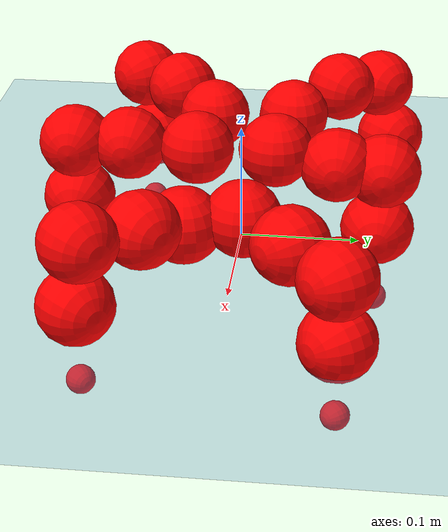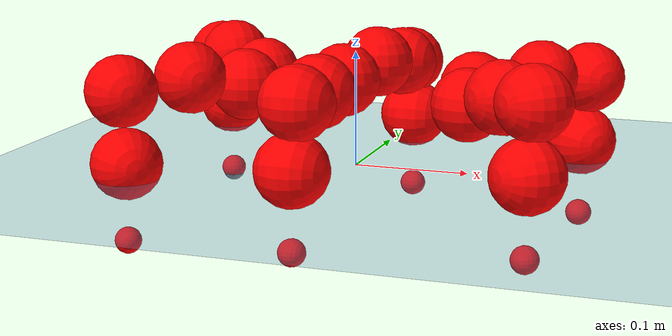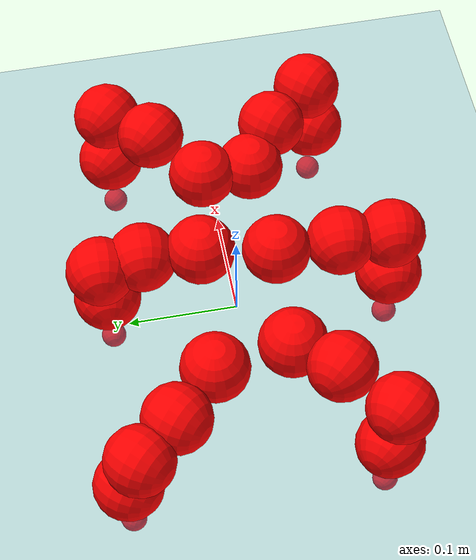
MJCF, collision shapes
<mujoco model="Golem">
  <compiler angle="radian" assetdir="assets" balanceinertia="true" inertiafromgeom="false"/>

  <option timestep="0.005" density="1.2" viscosity="2e-05"/>

  <size nkey="1"/>

  <visual>
    <quality shadowsize="8192"/>
    <map shadowclip="0.5"/>
  </visual>

  <default>
    <default class="/">
      <joint armature="0.01" damping="0.01" frictionloss="0.01"/>
      <geom contype="0" conaffinity="0" group="1" solref="-1000 -80"/>
      <site size="0.01 0.005 0.005" group="5"/>
      <general forcelimited="true" biastype="affine" gainprm="25" biasprm="0 -25 -0.5"/>
      <default class="visual">
        <geom type="mesh" group="2"/>
      </default>
      <default class="collision">
        <geom group="3"/>
      </default>
      <default class="foot">
        <geom size="0.01 0 0" condim="6" group="4" priority="1" solimp="0.015 1 0.01"/>
      </default>
      <default class="reward_collision_sphere">
        <geom group="5" rgba="1 0 0 1"/>
      </default>
    </default>
  </default>

  <asset>
    <texture type="skybox" colorspace="auto" name="//unnamed_texture_0" builtin="gradient" rgb1="0.95 0.95 0.95" rgb2="0.95 0.95 0.95" width="100" height="600"/>
    <texture type="2d" colorspace="auto" name="texplane" builtin="checker" rgb1="0.345 0.575 0.748" rgb2="0.345 0.575 0.748" markrgb="1 1 1" width="512" height="512"/>
    <material name="MatPlane" class="/" texture="texplane" texuniform="true" texrepeat="2 2" specular="0.9"/>
    <mesh name="body" class="/" file="body.stl" scale="0.001 0.001 0.001"/>
    <mesh name="coxa" class="/" file="coxa.stl" scale="0.001 0.001 0.001"/>
    <mesh name="femur" class="/" file="femur.stl" scale="0.001 0.001 0.001"/>
    <mesh name="tibia" class="/" file="tibia.stl" scale="0.001 0.001 0.001"/>
    <mesh name="tarsus" class="/" file="tarsus.stl" scale="0.001 0.001 0.001"/>
  </asset>

  <worldbody>
    <geom name="floor" class="/" size="100 100 0.125" type="plane" group="0" material="MatPlane"/>
    <light name="toplight_shadow" class="/" pos="0 0 5" dir="0.0990148 0.0990148 -0.990148" type="directional" ambient="0.04 0.04 0.04" diffuse="0.55 0.55 0.55" specular="0.12 0.12 0.12"/>
    <light name="toplight_fill" class="/" pos="0 0 5" dir="0.0990148 0.0990148 -0.990148" type="directional" castshadow="false" ambient="0.04 0.04 0.04" diffuse="0.3 0.3 0.3" specular="0.08 0.08 0.08"/>
    <body name="trunk" pos="0.0010328 -0.000956251 -0.00125227" quat="0.999982 -0.00276086 0.00195119 -0.00487625">
      <inertial pos="-0.0019397 -0.00198191 -0.00530893" quat="0.999999 -0.00025613 0.00145633 0.000642501" mass="1.41786" diaginertia="0.000901656 0.000216368 0.0263927"/>
      <joint name="//unnamed_joint_0" type="free"/>
      <geom name="//unnamed_geom_1" class="/" pos="0 0 0.0783172" quat="1 0 0 0" type="mesh" rgba="0.9 0.9 0.9 1" mesh="body"/>
      <site name="imu" class="/" pos="0.0259244 0.0282417 0.130419" size="0.00768109"/>
      <camera name="track" class="/" pos="0 -0.917413 0" quat="0.707107 0.707107 0 0" mode="trackcom"/>
      <camera name="ego_camera" class="/" pos="0.0808488 0 0.122371" quat="-0.5 -0.5 0.5 0.5"/>
      <body name="coxa_RR" pos="-0.10292 -0.0465149 0.0732142" quat="0.383006 -0.00582479 -0.000323856 -0.923727">
        <inertial pos="0.00153369 -0.00246888 -0.00793548" quat="0.999471 -0.0197652 0.0146754 0.0212745" mass="0.08192" diaginertia="0.000822954 0.000185778 0.0240298"/>
        <joint name="coxa_joint_RR" class="/" pos="0 0 0" axis="0.00245897 0.000188639 -0.999997" range="-2.97522 3.34296" armature="0.00766331" damping="0.00799696" frictionloss="0.00545377"/>
        <geom name="//unnamed_geom_2" class="/" type="mesh" rgba="0.2 0.2 0.2 1" mesh="coxa"/>
        <geom name="//unnamed_geom_3" class="reward_collision_sphere" size="0.0307244" pos="-0.0186574 0 0"/>
        <body name="femur_RR" pos="0.0310954 -0.000643964 0.00873795" quat="0.499913 -0.500076 0.500019 0.499993">
          <inertial pos="0.00190215 -0.000908158 0.00111193" quat="0.99998 -0.00628878 3.71316e-05 -0.000902232" mass="0.0937165" diaginertia="0.000891776 0.000193032 0.0286125"/>
          <joint name="femur_joint_RR" class="/" pos="0 0 0" axis="0.00174247 -0.0218351 -0.99976" range="-3.34175 3.16917" armature="0.0112395" damping="0.028982" frictionloss="0.00852796"/>
          <geom name="//unnamed_geom_4" class="/" type="mesh" rgba="0.9 0.9 0.9 1" mesh="femur"/>
          <geom name="//unnamed_geom_5" class="reward_collision_sphere" size="0.0307244"/>
          <body name="tibia_RR" pos="0.00799221 -0.0597592 -0.00163625" quat="0.00201001 0.999993 0.00177566 0.00256796">
            <inertial pos="-0.00861222 -0.00537084 -0.0021921" quat="0.999982 6.59747e-05 0.0055732 0.00205068" mass="0.0805882" diaginertia="0.00095427 0.000199239 0.0303829"/>
            <joint name="tibia_joint_RR" class="/" pos="0 0 0" axis="-0.0509879 -0.0126787 0.998619" range="-3.35045 3.16804" armature="0.0105934" damping="0.0386584" frictionloss="0.00767677"/>
            <geom name="//unnamed_geom_6" class="/" type="mesh" rgba="0.2 0.2 0.2 1" mesh="tibia"/>
            <geom name="//unnamed_geom_7" class="reward_collision_sphere" size="0.0307244"/>
            <body name="tarsus_RR" pos="0.062988 -0.00412623 0.00339163" quat="0.999999 0.000172773 -0.00146871 -0.00037782">
              <inertial pos="0.0399565 0.00147782 0.000630319" quat="0.49407 0.505834 0.501945 0.498075" mass="0.083266" diaginertia="0.000818988 0.000202983 0.0237025"/>
              <joint name="tarsus_joint_RR" class="/" pos="0 0 0" axis="0.041328 0.0153295 0.999028" range="-3.05215 3.13693" armature="0.00796416" damping="0" frictionloss="0.00753356"/>
              <geom name="//unnamed_geom_8" class="/" type="mesh" rgba="0.9 0.9 0.9 1" mesh="tarsus"/>
              <geom name="foot_1" class="foot" size="0.00693913" pos="0.0696543 0 0" quat="0 -0.707107 0 0.707107"/>
              <geom name="//unnamed_geom_10" class="reward_collision_sphere" size="0.0307244"/>
              <geom name="//unnamed_geom_11" class="reward_collision_sphere" size="0.0115216" pos="0.0668557 0 0"/>
              <site name="foot_1" class="foot" pos="0.0696543 0 0" quat="0 -0.707107 0 0.707107" size="0.00768109"/>
            </body>
          </body>
        </body>
      </body>
      <body name="coxa_RM" pos="0.000744169 -0.0545947 0.0833005" quat="0.70536 -0.00419882 -0.00150314 -0.708836">
        <inertial pos="-0.00425423 0.00940662 -0.00255016" quat="0.999982 0.00442181 -0.00301183 0.00258983" mass="0.103563" diaginertia="0.00107852 0.000203498 0.0274356"/>
        <joint name="coxa_joint_RM" class="/" pos="0 0 0" axis="0.0455614 -0.00875474 -0.998923" stiffness="0.00790957" range="-3.1592 2.9657" armature="0.00369813" damping="0.0321135" frictionloss="0.0104564"/>
        <geom name="//unnamed_geom_12" class="/" type="mesh" rgba="0.2 0.2 0.2 1" mesh="coxa"/>
        <geom name="//unnamed_geom_13" class="reward_collision_sphere" size="0.0307244" pos="-0.0186574 0 0"/>
        <body name="femur_RM" pos="0.0384713 -0.00087043 -0.000288495" quat="0.499921 -0.499629 0.500678 0.499772">
          <inertial pos="-0.00633203 -0.00199875 0.000378771" quat="0.999981 0.00480923 0.00139953 0.0034602" mass="0.0779007" diaginertia="0.00095687 0.000192361 0.0260257"/>
          <joint name="femur_joint_RM" class="/" pos="0 0 0" axis="0.000966428 -0.0132582 -0.999912" range="-3.04582 3.10401" armature="0.00758766" damping="0" frictionloss="0.00508013"/>
          <geom name="//unnamed_geom_14" class="/" type="mesh" rgba="0.9 0.9 0.9 1" mesh="femur"/>
          <geom name="//unnamed_geom_15" class="reward_collision_sphere" size="0.0307244"/>
          <body name="tibia_RM" pos="0.000979365 -0.046238 0.000205737" quat="7.94154e-05 1 0.000222668 0.00011957">
            <inertial pos="-0.00328141 -0.000308609 0.00959446" quat="0.998977 -0.0432393 0.0126169 -0.0039294" mass="0.0909066" diaginertia="0.00083211 0.000211337 0.0249686"/>
            <joint name="tibia_joint_RM" class="/" pos="0 0 0" axis="0.00125061 0.00536826 0.999985" range="-3.149 3.21391" armature="0.00429311" damping="0" frictionloss="0.00329999"/>
            <geom name="//unnamed_geom_16" class="/" type="mesh" rgba="0.2 0.2 0.2 1" mesh="tibia"/>
            <geom name="//unnamed_geom_17" class="reward_collision_sphere" size="0.0307244"/>
            <body name="tarsus_RM" pos="0.0539032 7.80504e-06 0.00398115" quat="1 -7.73817e-05 -7.24758e-05 4.88608e-05">
              <inertial pos="0.0304481 0.00202307 0.000122723" quat="0.518601 0.484812 0.514826 0.480587" mass="0.090042" diaginertia="0.000878813 0.000193821 0.0297181"/>
              <joint name="tarsus_joint_RM" class="/" pos="0 0 0" axis="-4.35723e-05 -0.000102954 1" range="-3.35138 3.04494" armature="0.00322628" damping="0" frictionloss="0.0082679"/>
              <geom name="//unnamed_geom_18" class="/" type="mesh" rgba="0.9 0.9 0.9 1" mesh="tarsus"/>
              <geom name="foot_2" class="foot" size="0.00473742" pos="0.0696543 0 0" quat="0 -0.707107 0 0.707107"/>
              <geom name="//unnamed_geom_20" class="reward_collision_sphere" size="0.0307244"/>
              <geom name="//unnamed_geom_21" class="reward_collision_sphere" size="0.0115216" pos="0.0668557 0 0"/>
              <site name="foot_2" class="foot" pos="0.0696543 0 0" quat="0 -0.707107 0 0.707107" size="0.00768109"/>
            </body>
          </body>
        </body>
      </body>
      <body name="coxa_RF" pos="0.120082 -0.0442702 0.0684148" quat="0.923808 2.28749e-05 -0.000169094 -0.382857">
        <inertial pos="0.00762912 0.0120841 -0.00639576" quat="0.999345 -0.0009903 0.0112843 0.0343612" mass="0.0943962" diaginertia="0.000860638 0.000204509 0.0279852"/>
        <joint name="coxa_joint_RF" class="/" pos="0 0 0" axis="0.00501563 -0.00350355 -0.999981" stiffness="6.72983e-05" range="-3.06279 2.93386" armature="0.00989257" damping="0" frictionloss="0.00749641"/>
        <geom name="//unnamed_geom_22" class="/" type="mesh" rgba="0.2 0.2 0.2 1" mesh="coxa"/>
        <geom name="//unnamed_geom_23" class="reward_collision_sphere" size="0.0307244" pos="-0.0186574 0 0"/>
        <body name="femur_RF" pos="0.0250685 0.00614668 0.01349" quat="0.497645 -0.498642 0.499614 0.504075">
          <inertial pos="-0.0012213 0.00737277 -0.0100696" quat="0.998586 0.0175096 -0.0488795 -0.0113739" mass="0.090237" diaginertia="0.000981518 0.000225583 0.0271507"/>
          <joint name="femur_joint_RF" class="/" pos="0 0 0" axis="0.00809411 -0.0112279 -0.999904" range="-3.27811 3.13311" armature="0.00707021" damping="0.0301779" frictionloss="0.0115187"/>
          <geom name="//unnamed_geom_24" class="/" type="mesh" rgba="0.9 0.9 0.9 1" mesh="femur"/>
          <geom name="//unnamed_geom_25" class="reward_collision_sphere" size="0.0307244"/>
          <body name="tibia_RF" pos="-0.00612191 -0.0526988 -0.00451938" quat="0.00252329 0.999993 -0.00255388 -0.00085852">
            <inertial pos="-0.0021165 -0.00520207 0.00315049" quat="0.999427 0.017712 -0.0268804 -0.0104179" mass="0.0886844" diaginertia="0.000908041 0.000207699 0.0283607"/>
            <joint name="tibia_joint_RF" class="/" pos="0 0 0" axis="0.0469019 0.00387533 0.998892" range="-3.1216 3.10227" armature="0.00891853" damping="0.0159735" frictionloss="0.0075579"/>
            <geom name="//unnamed_geom_26" class="/" type="mesh" rgba="0.2 0.2 0.2 1" mesh="tibia"/>
            <geom name="//unnamed_geom_27" class="reward_collision_sphere" size="0.0307244"/>
            <body name="tarsus_RF" pos="0.0564305 0.00218612 0.00510359" quat="0.999988 0.00110205 -0.000214788 -0.00482365">
              <inertial pos="0.0472494 0.000763375 -0.011746" quat="0.479026 0.490406 0.529965 0.499172" mass="0.109351" diaginertia="0.000918899 0.000229087 0.0315651"/>
              <joint name="tarsus_joint_RF" class="/" pos="0 0 0" axis="0.0529729 0.00154086 0.998595" range="-3.35313 3.11088" armature="0.00787034" damping="0" frictionloss="0.00509374"/>
              <geom name="//unnamed_geom_28" class="/" type="mesh" rgba="0.9 0.9 0.9 1" mesh="tarsus"/>
              <geom name="foot_3" class="foot" size="0.0070734" pos="0.0696543 0 0" quat="0 -0.707107 0 0.707107"/>
              <geom name="//unnamed_geom_30" class="reward_collision_sphere" size="0.0307244"/>
              <geom name="//unnamed_geom_31" class="reward_collision_sphere" size="0.0115216" pos="0.0668557 0 0"/>
              <site name="foot_3" class="foot" pos="0.0696543 0 0" quat="0 -0.707107 0 0.707107" size="0.00768109"/>
            </body>
          </body>
        </body>
      </body>
      <body name="coxa_LR" pos="-0.114393 0.0492412 0.0715415" quat="0.378033 -0.000732722 0.0008194 0.925792">
        <inertial pos="-0.00959182 0.00224287 0.00606006" quat="0.999213 0.0294535 -0.024281 0.0107718" mass="0.0884759" diaginertia="0.000898015 0.000199128 0.0269019"/>
        <joint name="coxa_joint_LR" class="/" pos="0 0 0" axis="-0.0522155 -0.00536906 -0.998621" stiffness="0.00314625" range="-3.12426 3.15856" armature="0.00908945" damping="0.0456664" frictionloss="0.00701016"/>
        <geom name="//unnamed_geom_32" class="/" type="mesh" rgba="0.2 0.2 0.2 1" mesh="coxa"/>
        <geom name="//unnamed_geom_33" class="reward_collision_sphere" size="0.0307244" pos="-0.0186574 0 0"/>
        <body name="femur_LR" pos="0.0423581 0.004621 0.00861548" quat="0.502507 -0.49915 0.501895 0.496425">
          <inertial pos="-0.00289751 -0.000406462 0.0027243" quat="0.999961 0.00348913 0.00467753 -0.00662929" mass="0.0893946" diaginertia="0.000923461 0.000198881 0.0256084"/>
          <joint name="femur_joint_LR" class="/" pos="0 0 0" axis="0.00228029 -0.00125329 0.999997" range="-3.22959 2.89932" armature="0.00682464" damping="0" frictionloss="0.00327841"/>
          <geom name="//unnamed_geom_34" class="/" type="mesh" rgba="0.9 0.9 0.9 1" mesh="femur"/>
          <geom name="//unnamed_geom_35" class="reward_collision_sphere" size="0.0307244"/>
          <body name="tibia_LR" pos="0.00701382 -0.0455566 -0.00444058" quat="0.000103116 1 9.94912e-05 0.000270331">
            <inertial pos="-0.00165961 0.000540412 -4.45705e-05" quat="0.999968 0.00438194 -0.0065066 0.00176388" mass="0.09685" diaginertia="0.000939736 0.000185842 0.0274859"/>
            <joint name="tibia_joint_LR" class="/" pos="0 0 0" axis="0.010377 -0.00856378 -0.999909" stiffness="0.00543272" range="-3.17755 3.3277" armature="0.0120328" damping="0" frictionloss="0.00958629"/>
            <geom name="//unnamed_geom_36" class="/" type="mesh" rgba="0.2 0.2 0.2 1" mesh="tibia"/>
            <geom name="//unnamed_geom_37" class="reward_collision_sphere" size="0.0307244"/>
            <body name="tarsus_LR" pos="0.0499273 0.0053878 0.011466" quat="1 8.34557e-05 -0.000871332 -0.00017864">
              <inertial pos="0.0394869 0.00371242 -0.000497566" quat="0.501851 0.505674 0.497818 0.494587" mass="0.091179" diaginertia="0.000925017 0.00020927 0.0277622"/>
              <joint name="tarsus_joint_LR" class="/" pos="0 0 0" axis="0.00322733 -0.0062746 -0.999975" stiffness="0.0234623" range="-3.34326 3.12142" armature="0.00715841" damping="0.0652805" frictionloss="0.00776006"/>
              <geom name="//unnamed_geom_38" class="/" type="mesh" rgba="0.9 0.9 0.9 1" mesh="tarsus"/>
              <geom name="foot_4" class="foot" size="0.0102438" pos="0.0696543 0 0" quat="0.707107 0 -0.707107 0"/>
              <geom name="//unnamed_geom_40" class="reward_collision_sphere" size="0.0307244"/>
              <geom name="//unnamed_geom_41" class="reward_collision_sphere" size="0.0115216" pos="0.0668557 0 0"/>
              <site name="foot_4" class="foot" pos="0.0696543 0 0" quat="0.707107 0 -0.707107 0" size="0.00768109"/>
            </body>
          </body>
        </body>
      </body>
      <body name="coxa_LM" pos="0.00842278 0.0488878 0.0884349" quat="0.704002 -0.00266599 0.00311349 0.710186">
        <inertial pos="0.00360688 0.000605883 -0.00587708" quat="0.999993 0.00165538 0.00100713 0.00326373" mass="0.0795552" diaginertia="0.000678004 0.000173652 0.0221182"/>
        <joint name="coxa_joint_LM" class="/" pos="0 0 0" axis="-0.000279055 -0.00149985 -0.999999" range="-2.96883 3.15118" armature="0.0106371" damping="0" frictionloss="0.004571"/>
        <geom name="//unnamed_geom_42" class="/" type="mesh" rgba="0.2 0.2 0.2 1" mesh="coxa"/>
        <geom name="//unnamed_geom_43" class="reward_collision_sphere" size="0.0307244" pos="-0.0186574 0 0"/>
        <body name="femur_LM" pos="0.0326703 -0.00665276 -0.00695136" quat="0.499981 -0.500009 0.499991 0.500019">
          <inertial pos="-0.00101678 0.00717547 -0.00106853" quat="0.999585 0.00813943 -0.0186772 0.0203451" mass="0.112624" diaginertia="0.00108608 0.000236204 0.0318818"/>
          <joint name="femur_joint_LM" class="/" pos="0 0 0" axis="-0.0069913 0.0190065 0.999795" range="-3.16399 3.1183" armature="0.00968985" damping="0" frictionloss="0.00528655"/>
          <geom name="//unnamed_geom_44" class="/" type="mesh" rgba="0.9 0.9 0.9 1" mesh="femur"/>
          <geom name="//unnamed_geom_45" class="reward_collision_sphere" size="0.0307244"/>
          <body name="tibia_LM" pos="0.00497321 -0.0381929 0.00401572" quat="-6.39242e-05 1 -6.2597e-05 8.33654e-06">
            <inertial pos="0.0107737 -0.0121202 0.000702624" quat="1 -0.000403334 -0.00050986 0.000635623" mass="0.0808688" diaginertia="0.00102194 0.000205988 0.027571"/>
            <joint name="tibia_joint_LM" class="/" pos="0 0 0" axis="-0.00379924 -0.00476753 -0.999981" range="-3.28799 3.14559" armature="0.00707516" damping="0" frictionloss="0.00974518"/>
            <geom name="//unnamed_geom_46" class="/" type="mesh" rgba="0.2 0.2 0.2 1" mesh="tibia"/>
            <geom name="//unnamed_geom_47" class="reward_collision_sphere" size="0.0307244"/>
            <body name="tarsus_LM" pos="0.0500795 -0.00254797 0.00531624" quat="1 -0.000660719 0.000478255 0.000124429">
              <inertial pos="0.0405919 0.00116369 -0.00057347" quat="0.499622 0.497458 0.502664 0.500242" mass="0.0975709" diaginertia="0.000940791 0.000202199 0.0245252"/>
              <joint name="tarsus_joint_LM" class="/" pos="0 0 0" axis="0.0171813 -0.0381757 -0.999123" stiffness="0.00352114" range="-3.17756 3.28427" armature="0.00749583" damping="0" frictionloss="0.0109117"/>
              <geom name="//unnamed_geom_48" class="/" type="mesh" rgba="0.9 0.9 0.9 1" mesh="tarsus"/>
              <geom name="foot_5" class="foot" size="0.00779437" pos="0.0696543 0 0" quat="0.707107 0 -0.707107 0"/>
              <geom name="//unnamed_geom_50" class="reward_collision_sphere" size="0.0307244"/>
              <geom name="//unnamed_geom_51" class="reward_collision_sphere" size="0.0115216" pos="0.0668557 0 0"/>
              <site name="foot_5" class="foot" pos="0.0696543 0 0" quat="0.707107 0 -0.707107 0" size="0.00768109"/>
            </body>
          </body>
        </body>
      </body>
      <body name="coxa_LF" pos="0.114626 0.027481 0.0742443" quat="0.924324 0.00183486 0.000743131 0.381602">
        <inertial pos="-0.000693902 0.00722617 0.000303587" quat="0.999979 -0.00309435 -0.00271441 0.00493301" mass="0.101716" diaginertia="0.00101922 0.000248122 0.0297618"/>
        <joint name="coxa_joint_LF" class="/" pos="0 0 0" axis="-0.0183095 -0.00829907 -0.999798" stiffness="0.0156287" range="-3.00316 3.19577" armature="0.00800709" damping="0.0253007" frictionloss="0.00581318"/>
        <geom name="//unnamed_geom_52" class="/" type="mesh" rgba="0.2 0.2 0.2 1" mesh="coxa"/>
        <geom name="//unnamed_geom_53" class="reward_collision_sphere" size="0.0307244" pos="-0.0186574 0 0"/>
        <body name="femur_LF" pos="0.0440844 -0.0051372 0.0065951" quat="0.501143 -0.500991 0.497403 0.500453">
          <inertial pos="-0.00274157 -0.00108397 -0.000771454" quat="0.998308 0.0400088 0.00713615 0.0415966" mass="0.0884023" diaginertia="0.000935688 0.000223878 0.0288622"/>
          <joint name="femur_joint_LF" class="/" pos="0 0 0" axis="0.0129845 -0.0228693 0.999654" range="-3.10736 3.22264" armature="0.00726926" damping="0" frictionloss="0.0123107"/>
          <geom name="//unnamed_geom_54" class="/" type="mesh" rgba="0.9 0.9 0.9 1" mesh="femur"/>
          <geom name="//unnamed_geom_55" class="reward_collision_sphere" size="0.0307244"/>
          <body name="tibia_LF" pos="0.00556235 -0.0506973 0.00163298" quat="-0.000571839 1 -0.000170473 -0.000341601">
            <inertial pos="-0.00152209 0.000385013 0.00129945" quat="0.999725 -0.016852 -0.00650368 -0.0149246" mass="0.0828651" diaginertia="0.000948654 0.000213721 0.0289695"/>
            <joint name="tibia_joint_LF" class="/" pos="0 0 0" axis="-0.0186841 0.0169322 -0.999682" range="-2.91343 3.16929" armature="0.00554524" damping="0" frictionloss="0.0102235"/>
            <geom name="//unnamed_geom_56" class="/" type="mesh" rgba="0.2 0.2 0.2 1" mesh="tibia"/>
            <geom name="//unnamed_geom_57" class="reward_collision_sphere" size="0.0307244"/>
            <body name="tarsus_LF" pos="0.0572742 -0.00316039 -0.00476321" quat="1 -0.000787301 0.000345879 -0.000243015">
              <inertial pos="0.0411176 0.00131144 -0.0110491" quat="0.499912 0.495588 0.502084 0.502385" mass="0.0948892" diaginertia="0.000941168 0.000210805 0.0288456"/>
              <joint name="tarsus_joint_LF" class="/" pos="0 0 0" axis="0.014252 0.035797 -0.999257" range="-3.1381 3.02502" armature="0.00793527" damping="0.062063" frictionloss="0.00784532"/>
              <geom name="//unnamed_geom_58" class="/" type="mesh" rgba="0.9 0.9 0.9 1" mesh="tarsus"/>
              <geom name="foot_6" class="foot" size="0.00720774" pos="0.0696543 0 0" quat="0.707107 0 -0.707107 0"/>
              <geom name="//unnamed_geom_60" class="reward_collision_sphere" size="0.0307244"/>
              <geom name="//unnamed_geom_61" class="reward_collision_sphere" size="0.0115216" pos="0.0668557 0 0"/>
              <site name="foot_6" class="foot" pos="0.0696543 0 0" quat="0.707107 0 -0.707107 0" size="0.00768109"/>
            </body>
          </body>
        </body>
      </body>
    </body>
  </worldbody>

  <contact>
    <pair class="/" geom1="floor" geom2="foot_1" name="//unnamed_contact_0"/>
    <pair class="/" geom1="floor" geom2="foot_2" name="//unnamed_contact_1"/>
    <pair class="/" geom1="floor" geom2="foot_3" name="//unnamed_contact_2"/>
    <pair class="/" geom1="floor" geom2="foot_4" name="//unnamed_contact_3"/>
    <pair class="/" geom1="floor" geom2="foot_5" name="//unnamed_contact_4"/>
    <pair class="/" geom1="floor" geom2="foot_6" name="//unnamed_contact_5"/>
  </contact>

  <actuator>
    <general name="coxa_joint_RR" class="/" joint="coxa_joint_RR" forcerange="-4.08108 4.08108" gainprm="24.6194" biasprm="0 -24.6194 -0.487781"/>
    <general name="femur_joint_RR" class="/" joint="femur_joint_RR" forcerange="-4.81431 4.81431" gainprm="24.6194" biasprm="0 -24.6194 -0.487781"/>
    <general name="tibia_joint_RR" class="/" joint="tibia_joint_RR" forcerange="-5.87368 5.87368" gainprm="24.6194" biasprm="0 -24.6194 -0.487781"/>
    <general name="tarsus_joint_RR" class="/" joint="tarsus_joint_RR" forcerange="-5.5065 5.5065" gainprm="24.6194" biasprm="0 -24.6194 -0.487781"/>
    <general name="coxa_joint_RM" class="/" joint="coxa_joint_RM" forcerange="-4.04559 4.04559" gainprm="24.6194" biasprm="0 -24.6194 -0.487781"/>
    <general name="femur_joint_RM" class="/" joint="femur_joint_RM" forcerange="-3.77998 3.77998" gainprm="24.6194" biasprm="0 -24.6194 -0.487781"/>
    <general name="tibia_joint_RM" class="/" joint="tibia_joint_RM" forcerange="-6.45003 6.45003" gainprm="24.6194" biasprm="0 -24.6194 -0.487781"/>
    <general name="tarsus_joint_RM" class="/" joint="tarsus_joint_RM" forcerange="-3.22281 3.22281" gainprm="24.6194" biasprm="0 -24.6194 -0.487781"/>
    <general name="coxa_joint_RF" class="/" joint="coxa_joint_RF" forcerange="-3.52706 3.52706" gainprm="24.6194" biasprm="0 -24.6194 -0.487781"/>
    <general name="femur_joint_RF" class="/" joint="femur_joint_RF" forcerange="-7.70281 7.70281" gainprm="24.6194" biasprm="0 -24.6194 -0.487781"/>
    <general name="tibia_joint_RF" class="/" joint="tibia_joint_RF" forcerange="-6.36019 6.36019" gainprm="24.6194" biasprm="0 -24.6194 -0.487781"/>
    <general name="tarsus_joint_RF" class="/" joint="tarsus_joint_RF" forcerange="-5.92142 5.92142" gainprm="24.6194" biasprm="0 -24.6194 -0.487781"/>
    <general name="coxa_joint_LR" class="/" joint="coxa_joint_LR" forcerange="-4.64864 4.64864" gainprm="24.6194" biasprm="0 -24.6194 -0.487781"/>
    <general name="femur_joint_LR" class="/" joint="femur_joint_LR" forcerange="-7.05393 7.05393" gainprm="24.6194" biasprm="0 -24.6194 -0.487781"/>
    <general name="tibia_joint_LR" class="/" joint="tibia_joint_LR" forcerange="-6.40425 6.40425" gainprm="24.6194" biasprm="0 -24.6194 -0.487781"/>
    <general name="tarsus_joint_LR" class="/" joint="tarsus_joint_LR" forcerange="-5.50492 5.50492" gainprm="24.6194" biasprm="0 -24.6194 -0.487781"/>
    <general name="coxa_joint_LM" class="/" joint="coxa_joint_LM" forcerange="-5.71857 5.71857" gainprm="24.6194" biasprm="0 -24.6194 -0.487781"/>
    <general name="femur_joint_LM" class="/" joint="femur_joint_LM" forcerange="-5.71941 5.71941" gainprm="24.6194" biasprm="0 -24.6194 -0.487781"/>
    <general name="tibia_joint_LM" class="/" joint="tibia_joint_LM" forcerange="-7.97252 7.97252" gainprm="24.6194" biasprm="0 -24.6194 -0.487781"/>
    <general name="tarsus_joint_LM" class="/" joint="tarsus_joint_LM" forcerange="-5.70209 5.70209" gainprm="24.6194" biasprm="0 -24.6194 -0.487781"/>
    <general name="coxa_joint_LF" class="/" joint="coxa_joint_LF" forcerange="-3.75703 3.75703" gainprm="24.6194" biasprm="0 -24.6194 -0.487781"/>
    <general name="femur_joint_LF" class="/" joint="femur_joint_LF" forcerange="-3.68037 3.68037" gainprm="24.6194" biasprm="0 -24.6194 -0.487781"/>
    <general name="tibia_joint_LF" class="/" joint="tibia_joint_LF" forcerange="-5.23627 5.23627" gainprm="24.6194" biasprm="0 -24.6194 -0.487781"/>
    <general name="tarsus_joint_LF" class="/" joint="tarsus_joint_LF" forcerange="-5.96851 5.96851" gainprm="24.6194" biasprm="0 -24.6194 -0.487781"/>
  </actuator>

  <sensor>
    <gyro site="imu" name="imu_angular_velocity"/>
    <velocimeter site="imu" name="imu_linear_velocity"/>
    <framelinvel objtype="site" objname="foot_1" name="foot_1_global_linear_velocity"/>
    <framelinvel objtype="site" objname="foot_2" name="foot_2_global_linear_velocity"/>
    <framelinvel objtype="site" objname="foot_3" name="foot_3_global_linear_velocity"/>
    <framelinvel objtype="site" objname="foot_4" name="foot_4_global_linear_velocity"/>
    <framelinvel objtype="site" objname="foot_5" name="foot_5_global_linear_velocity"/>
    <framelinvel objtype="site" objname="foot_6" name="foot_6_global_linear_velocity"/>
  </sensor>

  <keyframe>
    <key name="home" qpos="0 0 0.1457 1 0 0 0 0 0 0 0 0 0 0 0 0 0 0 0 0 0 0 0 0 0 0 0 0 0 0 0"/>
  </keyframe>
</mujoco>
